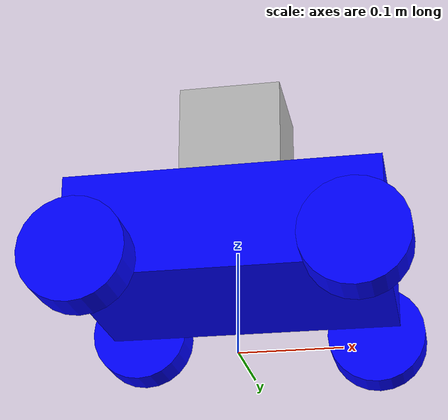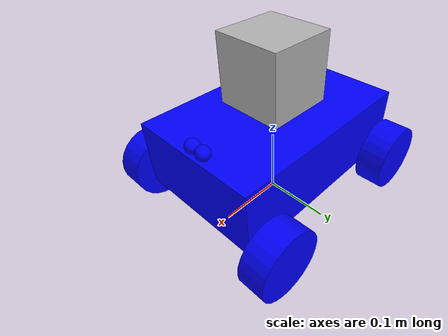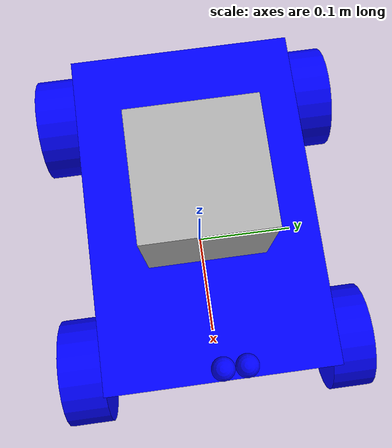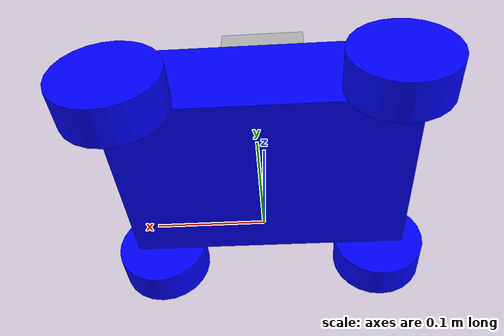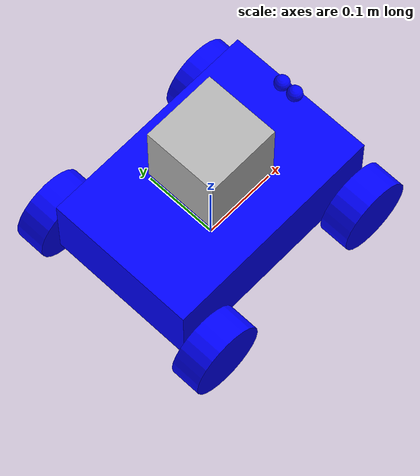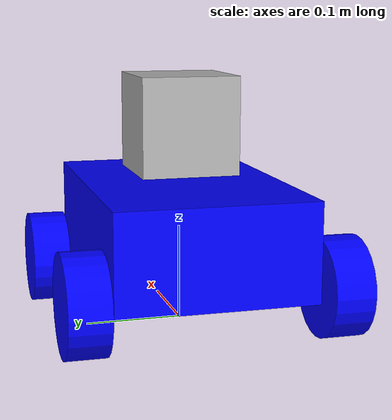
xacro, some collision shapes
<?xml version="1.0"?>
<robot xmlns:xacro="http://www.ros.org/wiki/xacro" name="mobile">
 xmlns:contromobiler="http://playerstage.sourceforge.net/gazebo/xmlschema/#contromobiler"

<xacro:include filename="$(find mobile_description)/urdf/materials.xacro"/>
<xacro:include filename="$(find mobile_description)/urdf/mobile.gazebo"/>

<link name="base_footprint">
   <visual>
      <origin xyz="0 0 0" rpy="0 0 0" />
      <geometry>
        <box size="0.001 0.001 0.001" />
      </geometry>
    </visual>
  </link>

  <joint name="base_link_joint" type="fixed">
    <origin xyz="0.0 0 0" rpy="0 0 0" />
    <parent link="base_footprint"/>
    <child link="base_link" />
  </joint>

<link name="base_link">
          <visual>
              <origin xyz="0 0 0.1" rpy="0 0 1.57"/>
              <geometry>
              <box size="0.2 .3 .1"/>
              </geometry>
              <material name="blue">
              <color rgba="0 0 1 1"/>
              </material>
          </visual>
      <collision>
        <origin xyz="0 0 0.1" rpy="0 0 1.57"/>
        <geometry>
         <box size="0.2 .3 .1"/>
          </geometry>
</collision>
<inertial>
   <mass
        value="5.52" />
      <inertia
        ixx="0.0458"
        ixy="0"
        ixz="0"
        iyy="0.0229"
        iyz="0"
        izz="0.0595" />
</inertial>
</link>

<link name="wheel_1">
          <visual>
              <origin xyz="0 0 0" rpy="0 0 0"/>
              <geometry>
              <cylinder length="0.04" radius="0.05"/>
              </geometry>
              <material name="blue">
              <color rgba="0 0 1 1"/>
              </material>
          </visual>
      <collision>
        <origin xyz="0 0 0" rpy="0 0 0"/>
        <geometry>
         <cylinder length="0.04" radius="0.05"/>
          </geometry>
</collision>
<inertial>
   <mass
        value="0.2" />
      <inertia
        ixx="0.0002"
        ixy="0"
        ixz="0"
        iyy="0.00015"
        iyz="0"
        izz="0.0002" />
</inertial>
</link>

<joint name="base_to_wheel1" type="continuous">
<parent link="base_link"/>
<child link="wheel_1"/>
<origin xyz="0.125 0.125 0.045" rpy="0 1.57 1.57"/>
<axis xyz="0 0 1"/>
</joint>

<link name="wheel_2">
          <visual>
              <origin xyz="0 0 0" rpy="0 0 0"/>
              <geometry>
              <cylinder length="0.04" radius="0.05"/>
              </geometry>
              <material name="blue">
              <color rgba="0 0 1 1"/>
              </material>
          </visual>
      <collision>
        <origin xyz="0 0 0" rpy="0 0 0"/>
        <geometry>
         <cylinder length="0.04" radius="0.05"/>
          </geometry>
</collision>
<inertial>
  <mass
        value="0.2" />
      <inertia
        ixx="0.0002"
        ixy="0"
        ixz="0"
        iyy="0.00015"
        iyz="0"
        izz="0.0002" />
</inertial>
</link>

<joint name="base_to_wheel2" type="continuous">
<parent link="base_link"/>
<child link="wheel_2"/>
<origin xyz="-0.125 0.125 0.06" rpy="0 1.57 1.57"/>
<axis xyz="0 0 1"/>
</joint>

<link name="wheel_3">
          <visual>
              <origin xyz="0 0 0" rpy="0 0 0"/>
              <geometry>
              <cylinder length="0.04" radius="0.05"/>
              </geometry>
              <material name="blue">
              <color rgba="0 0 1 1"/>
              </material>
          </visual>
      <collision>
        <origin xyz="0 0 0" rpy="0 0 0"/>
        <geometry>
         <cylinder length="0.04" radius="0.05"/>
          </geometry>
</collision>
<inertial>
  <mass
        value="0.2" />
      <inertia
        ixx="0.0002"
        ixy="0"
        ixz="0"
        iyy="0.00015"
        iyz="0"
        izz="0.0002" />
</inertial>
</link>

<joint name="base_to_wheel3" type="continuous">
<parent link="base_link"/>
<child link="wheel_3"/>
<origin xyz="0.125 -0.125 0.06" rpy="0 1.57 1.57"/>
<axis xyz="0 0 1"/>
</joint>

<link name="wheel_4">
          <visual>
              <origin xyz="0 0 0" rpy="0 0 0"/>
              <geometry>
              <cylinder length="0.04" radius="0.05"/>
              </geometry>
              <material name="blue">
              <color rgba="0 0 1 1"/>
              </material>
          </visual>
      <collision>
        <origin xyz="0 0 0" rpy="0 0 0"/>
        <geometry>
         <cylinder length="0.04" radius="0.05"/>
          </geometry>
</collision>
<inertial>
   <mass
        value="0.2" />
      <inertia
        ixx="0.0002"
        ixy="0"
        ixz="0"
        iyy="0.00015"
        iyz="0"
        izz="0.0002" />
</inertial>
</link>

<joint name="base_to_wheel4" type="continuous">
<parent link="base_link"/>
<child link="wheel_4"/>
<origin xyz="-0.125 -0.125 0.06" rpy="0 1.57 1.57"/>
<axis xyz="0 0 1"/>
</joint>

<link name="camera_link">
          <visual>
              <origin xyz="0 0 0" rpy="0 0 0"/>
              <geometry>
              <sphere radius="0.01"/>
              </geometry>
              <material name="blue">
              <color rgba="0 0 1 1"/>
              </material>
          </visual>
      <collision>
        <origin xyz="0 0 0" rpy="0 0 0"/>
        <geometry>
         <sphere radius="0.01"/>
          </geometry>
</collision>
<inertial>
   <mass
        value="0.01" />
      <inertia
        ixx="0.00301717973628494"
        ixy="-3.18755438710738E-17"
        ixz="-6.24500451351651E-17"
        iyy="0.0176625083227497"
        iyz="-0.000444787144430361"
        izz="0.015853003043962" />
</inertial>
</link>

<joint name="camera_joint" type="fixed">
   <origin xyz="0.14 0 0.16" rpy="0 0 0" />
   <parent link="base_link"/>
   <child link="camera_link" />
<axis xyz="1 0 0"/>
</joint>

 <joint name="hokuyo_joint" type="fixed">
    <axis xyz="0 1 0" />
    <origin xyz="0 0 0.21" rpy="0 0 0"/>
    <parent link="base_link"/>
    <child link="hokuyo_link"/>
  </joint>

  <!-- Hokuyo Laser -->
  <link name="hokuyo_link">
    <collision>
      <origin xyz="0 0 0" rpy="0 0 0"/>
      <geometry>
    <box size="0.1 0.1 0.1"/>
      </geometry>
    </collision>

    <visual>
      <origin xyz="0 0 0" rpy="0 0 0"/>
      <geometry>
        <mesh filename="package://mobile_description/meshes/hokuyo.dae"/>
      </geometry>
    </visual>

    <inertial>
      <mass value="1e-5" />
      <origin xyz="0 0 0" rpy="0 0 0"/>
      <inertia ixx="1e-6" ixy="0" ixz="0" iyy="1e-6" iyz="0" izz="1e-6" />
    </inertial>
  </link>

<link name="sonar_link">
          <visual>
              <origin xyz="0 0 0" rpy="0 0 0"/>
              <geometry>
              <sphere radius="0.01"/>
              </geometry>
              <material name="blue">
              <color rgba="0 0 1 1"/>
              </material>
          </visual>
      <collision>
        <origin xyz="0 0 0" rpy="0 0 0"/>
        <geometry>
         <sphere radius="0.01"/>
          </geometry>
</collision>
<inertial>
   <mass
        value="0.01" />
      <inertia
        ixx="0.00301717973628494"
        ixy="-3.18755438710738E-17"
        ixz="-6.24500451351651E-17"
        iyy="0.0176625083227497"
        iyz="-0.000444787144430361"
        izz="0.015853003043962" />
</inertial>
</link>

<joint name="sonar_joint" type="fixed">
   <origin xyz="0.14 0.02 0.16" rpy="0 0 0" />
   <parent link="base_link"/>
   <child link="sonar_link" />
<axis xyz="0 1 0"/>
</joint>

<transmission name="tran1">
    <type>transmission_interface/SimpleTransmission</type>
    <joint name="base_to_wheel1">
      <hardwareInterface>EffortJointInterface</hardwareInterface>
    </joint>
    <actuator name="motor1">
      <hardwareInterface>EffortJointInterface</hardwareInterface>
      <mechanicalReduction>1</mechanicalReduction>
    </actuator>
</transmission>

<transmission name="tran2">
    <type>transmission_interface/SimpleTransmission</type>
    <joint name="base_to_wheel2">
      <hardwareInterface>EffortJointInterface</hardwareInterface>
    </joint>
    <actuator name="motor2">
      <hardwareInterface>EffortJointInterface</hardwareInterface>
      <mechanicalReduction>1</mechanicalReduction>
    </actuator>
</transmission>

<transmission name="tran3">
    <type>transmission_interface/SimpleTransmission</type>
    <joint name="base_to_wheel3">
      <hardwareInterface>EffortJointInterface</hardwareInterface>
    </joint>
    <actuator name="motor3">
      <hardwareInterface>EffortJointInterface</hardwareInterface>
      <mechanicalReduction>1</mechanicalReduction>
    </actuator>
</transmission>

<transmission name="tran4">
    <type>transmission_interface/SimpleTransmission</type>
    <joint name="base_to_wheel4">
      <hardwareInterface>EffortJointInterface</hardwareInterface>
    </joint>
    <actuator name="motor4">
      <hardwareInterface>EffortJointInterface</hardwareInterface>
      <mechanicalReduction>1</mechanicalReduction>
    </actuator>
</transmission>

</robot>
